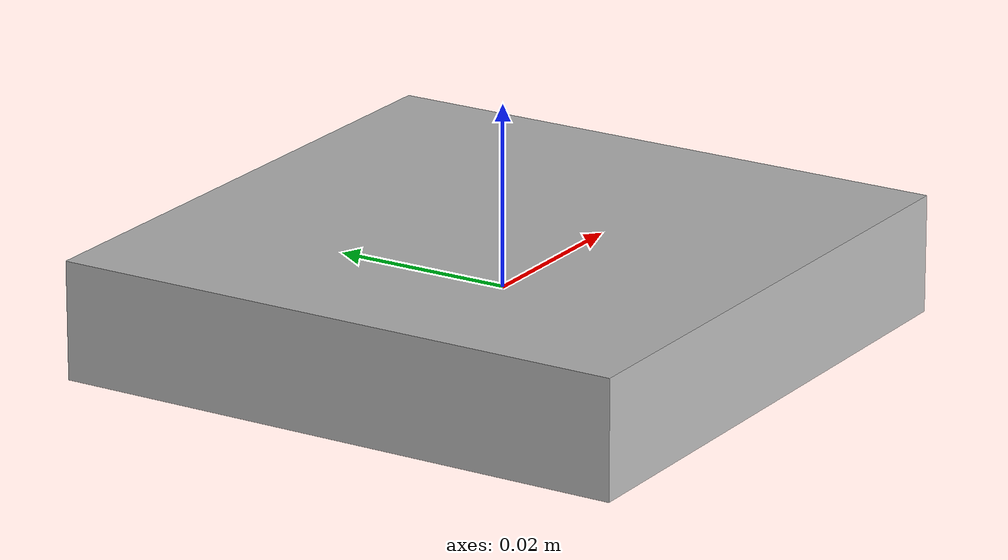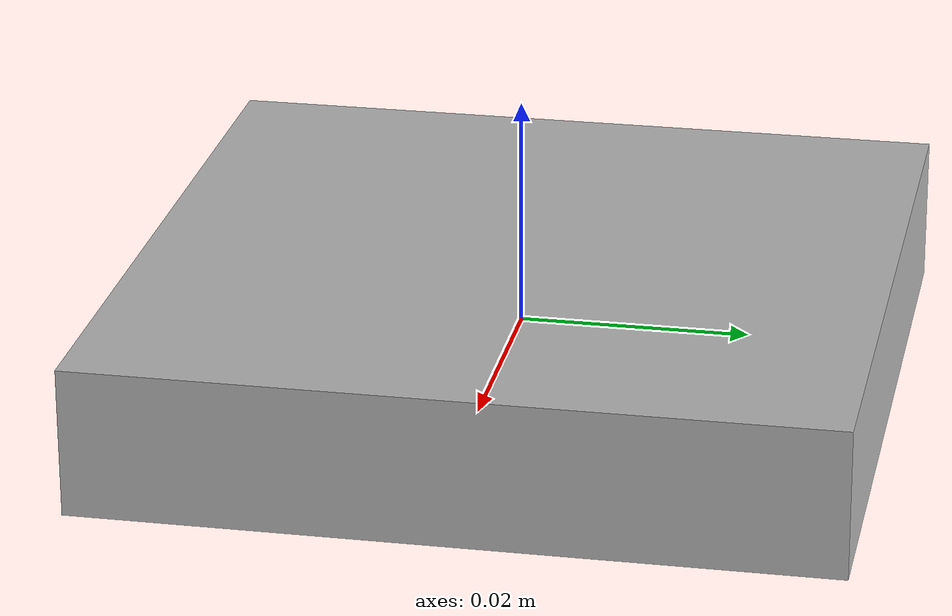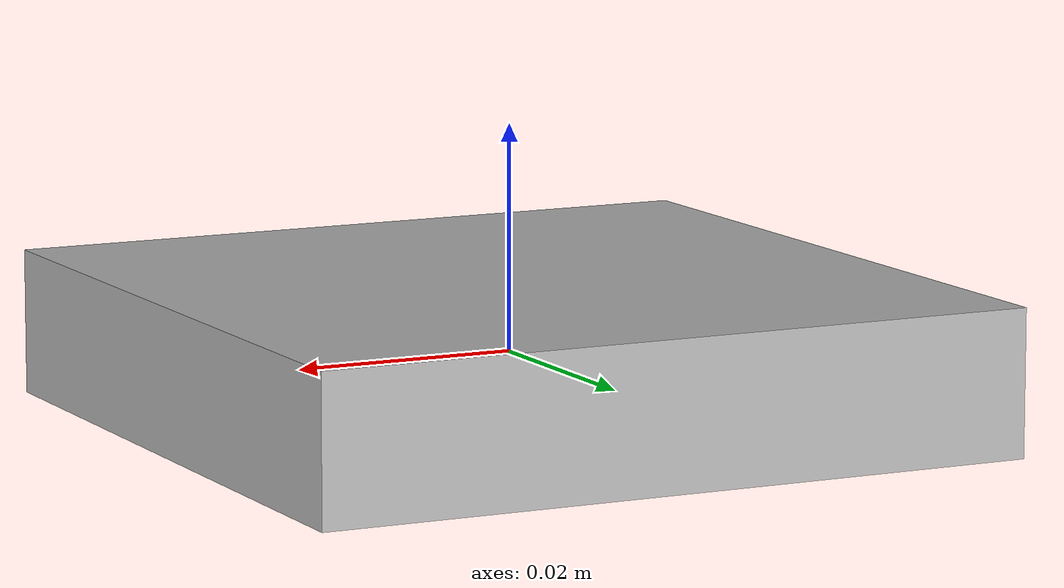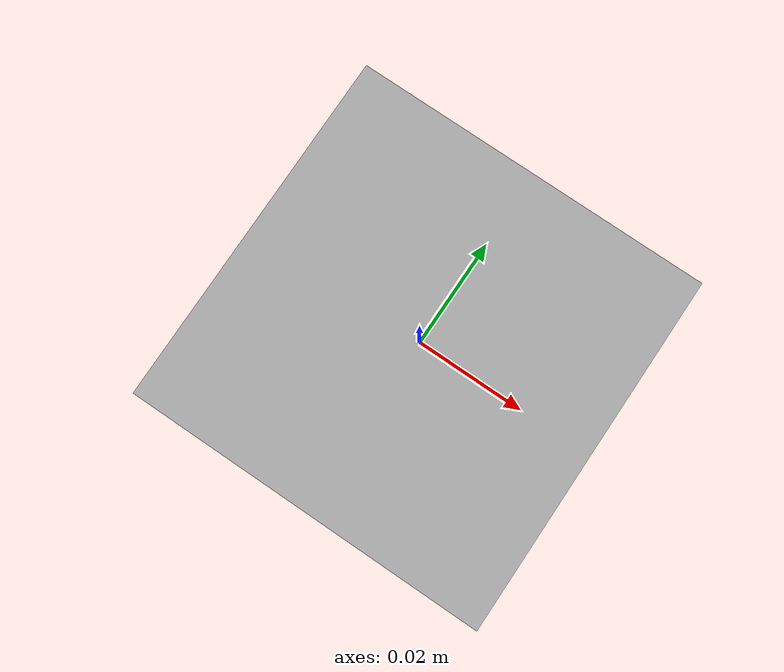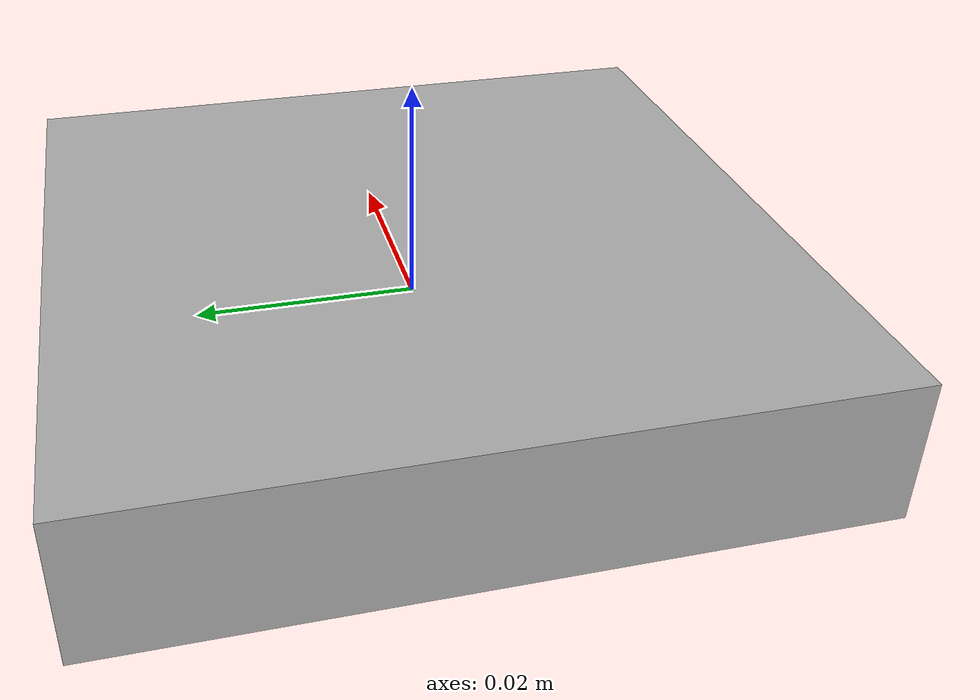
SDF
<?xml version="1.0"?>
<sdf version="1.9">
  <model name="panda_schunk_wsg_flange">

    <link name="body">
      <inertial>
        <!-- Weighed on scale -->
        <mass>0.104</mass>
        <!-- Using fix_inertia based on visuals -->
        <pose>0 0 0 0 0 0</pose>
        <inertia>
          <ixx>3.8081e-05</ixx>
          <ixy>0</ixy>
          <ixz>0</ixz>
          <iyy>3.8081e-05</iyy>
          <iyz>0</iyz>
          <izz>7.3233e-05</izz>
        </inertia>
      </inertial>

      <visual name="two_plates_estimate">
        <geometry>
          <box>
            <size>0.065 0.065 0.013</size>
          </box>
        </geometry>
      </visual>
    </link>

    <frame name="mount_to_panda_wrist">
      <pose>0.0 0.0 0  0 0 -0.0065</pose>
    </frame>
    <frame name="mount_to_gripper">
    <pose>0.0 0.0 0  0 0 0.0065</pose>
    </frame>
  </model>
</sdf>
